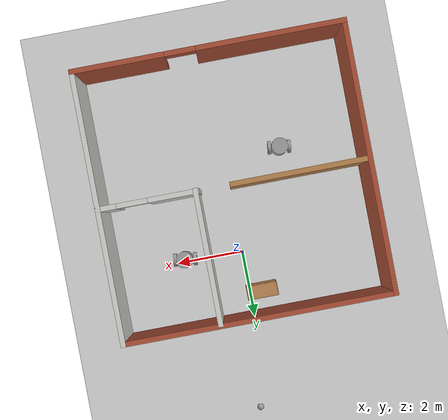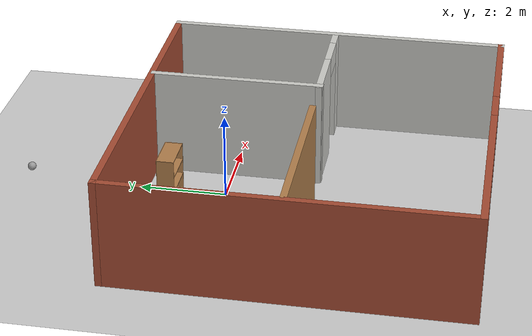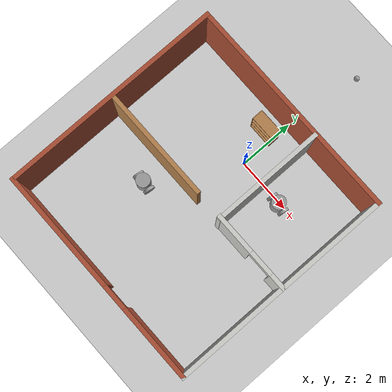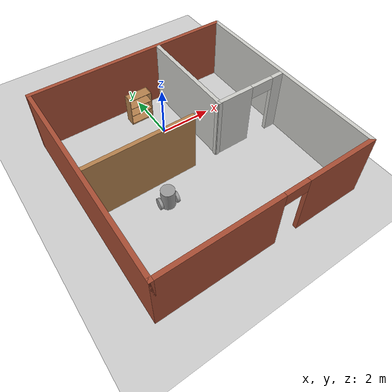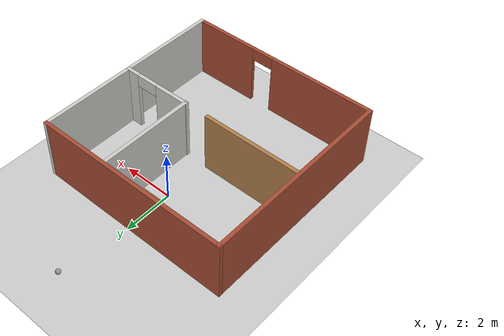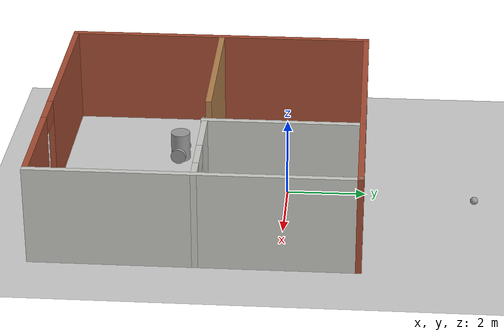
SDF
<sdf version="1.6">
 <world name="default">
  <plugin name="welcome" filename="libwelcome.so"/>
  <light name="sun" type="directional">
   <pose>0 0 10 0 -0 0</pose>
   <diffuse>0.8 0.8 0.8 1</diffuse>
   <specular>0.1 0.1 0.1 1</specular>
   <attenuation>
    <range>1000</range>
    <constant>0.9</constant>
    <linear>0.01</linear>
    <quadratic>0.001</quadratic>
   </attenuation>
   <direction>-0.5 0.5 -1</direction>
  </light>
  <model name="ground_plane">
   <static>1</static>
   <link name="link">
    <collision name="collision">
     <geometry><plane><normal>0 0 1</normal><size>100 100</size></plane></geometry>
     <surface><friction><ode><mu>100</mu><mu2>50</mu2></ode></friction></surface>
    </collision>
    <visual name="visual">
     <cast_shadows>0</cast_shadows>
     <geometry><plane><normal>0 0 1</normal><size>100 100</size></plane></geometry>
     <material>
      <script><uri>file://media/materials/scripts/gazebo.material</uri><name>Gazebo/Grey</name></script>
     </material>
    </visual>
   </link>
  </model>
  <gravity>0 0 -9.8</gravity>
  <magnetic_field>6e-06 2.3e-05 -4.2e-05</magnetic_field>
  <atmosphere type="adiabatic"/>
  <physics name="default_physics" default="0" type="ode">
   <max_step_size>0.001</max_step_size>
   <real_time_factor>1</real_time_factor>
   <real_time_update_rate>1000</real_time_update_rate>
  </physics>
  <scene><ambient>0.4 0.4 0.4 1</ambient><background>0.7 0.7 0.7 1</background><shadows>1</shadows></scene>
  <spherical_coordinates>
   <surface_model>EARTH_WGS84</surface_model>
   <latitude_deg>0</latitude_deg>
   <longitude_deg>0</longitude_deg>
   <elevation>0</elevation>
   <heading_deg>0</heading_deg>
  </spherical_coordinates>
  <model name="Billy">
   <link name="link_0">
    <pose>0 0 0.116667 0 -0 0</pose>
    <inertial>
     <mass>1</mass>
     <inertia><ixx>0.145833</ixx><ixy>0</ixy><ixz>0</ixz><iyy>0.145833</iyy><iyz>0</iyz><izz>0.125</izz></inertia>
     <pose>0 0 0.2 0 -0 0</pose>
    </inertial>
    <visual name="visual">
     <geometry><cylinder><radius>0.25</radius><length>0.75</length></cylinder></geometry>
     <material>
      <lighting>1</lighting>
      <script><uri>file://media/materials/scripts/gazebo.material</uri><name>Gazebo/Grey</name></script>
      <shader type="pixel"><normal_map>__default__</normal_map></shader>
      <ambient>0.3 0.3 0.3 1</ambient>
      <diffuse>0.7 0.7 0.7 1</diffuse>
      <specular>0.01 0.01 0.01 1</specular>
      <emissive>0 0 0 1</emissive>
     </material>
    </visual>
    <collision name="collision">
     <geometry><cylinder><radius>0.25</radius><length>0.75</length></cylinder></geometry>
     <surface>
      <friction>
       <ode><mu>1</mu><mu2>1</mu2><fdir1>0 0 0</fdir1><slip1>0</slip1><slip2>0</slip2></ode>
       <torsional>
        <coefficient>1</coefficient>
        <patch_radius>0</patch_radius>
        <surface_radius>0</surface_radius>
        <use_patch_radius>1</use_patch_radius>
        <ode><slip>0</slip></ode>
       </torsional>
      </friction>
      <bounce><restitution_coefficient>0</restitution_coefficient><threshold>1e+06</threshold></bounce>
      <contact>
       <collide_without_contact>0</collide_without_contact>
       <collide_without_contact_bitmask>1</collide_without_contact_bitmask>
       <collide_bitmask>1</collide_bitmask>
       <ode>
        <soft_cfm>0</soft_cfm>
        <soft_erp>0.2</soft_erp>
        <kp>1e+13</kp>
        <kd>1</kd>
        <max_vel>0.01</max_vel>
        <min_depth>0</min_depth>
       </ode>
       <bullet>
        <split_impulse>1</split_impulse>
        <split_impulse_penetration_threshold>-0.01</split_impulse_penetration_threshold>
        <soft_cfm>0</soft_cfm>
        <soft_erp>0.2</soft_erp>
        <kp>1e+13</kp>
        <kd>1</kd>
       </bullet>
      </contact>
     </surface>
    </collision>
   </link>
   <link name="link_1">
    <pose>0 -0.300019 -0.058333 1.5707 -0 0</pose>
    <inertial>
     <mass>1</mass>
     <inertia><ixx>0.145833</ixx><ixy>0</ixy><ixz>0</ixz><iyy>0.145833</iyy><iyz>0</iyz><izz>0.125</izz></inertia>
    </inertial>
    <visual name="visual">
     <geometry><cylinder><radius>0.2</radius><length>0.1</length></cylinder></geometry>
     <material>
      <lighting>1</lighting>
      <script><uri>file://media/materials/scripts/gazebo.material</uri><name>Gazebo/Grey</name></script>
      <shader type="pixel"><normal_map>__default__</normal_map></shader>
      <ambient>0.3 0.3 0.3 1</ambient>
      <diffuse>0.7 0.7 0.7 1</diffuse>
      <specular>0.01 0.01 0.01 1</specular>
      <emissive>0 0 0 1</emissive>
     </material>
    </visual>
    <collision name="collision">
     <geometry><cylinder><radius>0.2</radius><length>0.1</length></cylinder></geometry>
     <surface>
      <friction>
       <ode><mu>1</mu><mu2>1</mu2><fdir1>0 0 0</fdir1><slip1>0</slip1><slip2>0</slip2></ode>
       <torsional>
        <coefficient>1</coefficient>
        <patch_radius>0</patch_radius>
        <surface_radius>0</surface_radius>
        <use_patch_radius>1</use_patch_radius>
        <ode><slip>0</slip></ode>
       </torsional>
      </friction>
      <bounce><restitution_coefficient>0</restitution_coefficient><threshold>1e+06</threshold></bounce>
      <contact>
       <collide_without_contact>0</collide_without_contact>
       <collide_without_contact_bitmask>1</collide_without_contact_bitmask>
       <collide_bitmask>1</collide_bitmask>
       <ode>
        <soft_cfm>0</soft_cfm>
        <soft_erp>0.2</soft_erp>
        <kp>1e+13</kp>
        <kd>1</kd>
        <max_vel>0.01</max_vel>
        <min_depth>0</min_depth>
       </ode>
       <bullet>
        <split_impulse>1</split_impulse>
        <split_impulse_penetration_threshold>-0.01</split_impulse_penetration_threshold>
        <soft_cfm>0</soft_cfm>
        <soft_erp>0.2</soft_erp>
        <kp>1e+13</kp>
        <kd>1</kd>
       </bullet>
      </contact>
     </surface>
    </collision>
   </link>
   <link name="link_1_clone">
    <pose>0 0.300019 -0.058333 1.5707 -0 0</pose>
    <inertial>
     <mass>1</mass>
     <inertia><ixx>0.145833</ixx><ixy>0</ixy><ixz>0</ixz><iyy>0.145833</iyy><iyz>0</iyz><izz>0.125</izz></inertia>
    </inertial>
    <visual name="visual">
     <geometry><cylinder><radius>0.2</radius><length>0.1</length></cylinder></geometry>
     <material>
      <lighting>1</lighting>
      <script><uri>file://media/materials/scripts/gazebo.material</uri><name>Gazebo/Grey</name></script>
      <shader type="pixel"><normal_map>__default__</normal_map></shader>
      <ambient>0.3 0.3 0.3 1</ambient>
      <diffuse>0.7 0.7 0.7 1</diffuse>
      <specular>0.01 0.01 0.01 1</specular>
      <emissive>0 0 0 1</emissive>
     </material>
    </visual>
    <collision name="collision">
     <geometry><cylinder><radius>0.2</radius><length>0.1</length></cylinder></geometry>
     <surface>
      <friction>
       <ode><mu>1</mu><mu2>1</mu2><fdir1>0 0 0</fdir1><slip1>0</slip1><slip2>0</slip2></ode>
       <torsional>
        <coefficient>1</coefficient>
        <patch_radius>0</patch_radius>
        <surface_radius>0</surface_radius>
        <use_patch_radius>1</use_patch_radius>
        <ode><slip>0</slip></ode>
       </torsional>
      </friction>
      <bounce><restitution_coefficient>0</restitution_coefficient><threshold>1e+06</threshold></bounce>
      <contact>
       <collide_without_contact>0</collide_without_contact>
       <collide_without_contact_bitmask>1</collide_without_contact_bitmask>
       <collide_bitmask>1</collide_bitmask>
       <ode>
        <soft_cfm>0</soft_cfm>
        <soft_erp>0.2</soft_erp>
        <kp>1e+13</kp>
        <kd>1</kd>
        <max_vel>0.01</max_vel>
        <min_depth>0</min_depth>
       </ode>
       <bullet>
        <split_impulse>1</split_impulse>
        <split_impulse_penetration_threshold>-0.01</split_impulse_penetration_threshold>
        <soft_cfm>0</soft_cfm>
        <soft_erp>0.2</soft_erp>
        <kp>1e+13</kp>
        <kd>1</kd>
       </bullet>
      </contact>
     </surface>
    </collision>
   </link>
   <joint name="link_0_JOINT_1" type="revolute">
    <parent>link_0</parent>
    <child>link_1</child>
    <axis>
     <xyz>1 0 0</xyz>
     <use_parent_model_frame>0</use_parent_model_frame>
     <limit>
      <lower>-1.79769e+308</lower>
      <upper>1.79769e+308</upper>
      <effort>-1</effort>
      <velocity>-1</velocity>
     </limit>
     <dynamics>
      <spring_reference>0</spring_reference>
      <spring_stiffness>0</spring_stiffness>
      <damping>0</damping>
     </dynamics>
    </axis>
    <physics>
     <ode><limit><cfm>0</cfm><erp>0.2</erp></limit><suspension><cfm>0</cfm><erp>0.2</erp></suspension></ode>
    </physics>
   </joint>
   <joint name="link_0_JOINT_2" type="revolute">
    <parent>link_0</parent>
    <child>link_1_clone</child>
    <axis>
     <xyz>1 0 0</xyz>
     <use_parent_model_frame>0</use_parent_model_frame>
     <limit>
      <lower>-1.79769e+308</lower>
      <upper>1.79769e+308</upper>
      <effort>-1</effort>
      <velocity>-1</velocity>
     </limit>
     <dynamics>
      <spring_reference>0</spring_reference>
      <spring_stiffness>0</spring_stiffness>
      <damping>0</damping>
     </dynamics>
    </axis>
    <physics>
     <ode><limit><cfm>0</cfm><erp>0.2</erp></limit><suspension><cfm>0</cfm><erp>0.2</erp></suspension></ode>
    </physics>
   </joint>
   <static>0</static>
   <pose>-1.67828 -2.91025 0.258333 0 0 -1.68019</pose>
  </model>
  <model name="bookshelf">
   <static>1</static>
   <link name="link">
    <inertial><mass>1</mass></inertial>
    <collision name="back">
     <pose>0 0.005 0.6 0 -0 0</pose>
     <geometry><box><size>0.9 0.01 1.2</size></box></geometry>
    </collision>
    <visual name="visual1">
     <pose>0 0.005 0.6 0 -0 0</pose>
     <geometry><box><size>0.9 0.01 1.2</size></box></geometry>
     <material>
      <script><uri>file://media/materials/scripts/gazebo.material</uri><name>Gazebo/Wood</name></script>
     </material>
    </visual>
    <collision name="left_side">
     <pose>0.45 -0.195 0.6 0 -0 0</pose>
     <geometry><box><size>0.02 0.4 1.2</size></box></geometry>
    </collision>
    <visual name="visual2">
     <pose>0.45 -0.195 0.6 0 -0 0</pose>
     <geometry><box><size>0.02 0.4 1.2</size></box></geometry>
     <material>
      <script><uri>file://media/materials/scripts/gazebo.material</uri><name>Gazebo/Wood</name></script>
     </material>
    </visual>
    <collision name="right_side">
     <pose>-0.45 -0.195 0.6 0 -0 0</pose>
     <geometry><box><size>0.02 0.4 1.2</size></box></geometry>
    </collision>
    <visual name="visual3">
     <pose>-0.45 -0.195 0.6 0 -0 0</pose>
     <geometry><box><size>0.02 0.4 1.2</size></box></geometry>
     <material>
      <script><uri>file://media/materials/scripts/gazebo.material</uri><name>Gazebo/Wood</name></script>
     </material>
    </visual>
    <collision name="bottom">
     <pose>0 -0.195 0.03 0 -0 0</pose>
     <geometry><box><size>0.88 0.4 0.06</size></box></geometry>
    </collision>
    <visual name="visual4">
     <pose>0 -0.195 0.03 0 -0 0</pose>
     <geometry><box><size>0.88 0.4 0.06</size></box></geometry>
     <material>
      <script><uri>file://media/materials/scripts/gazebo.material</uri><name>Gazebo/Wood</name></script>
     </material>
    </visual>
    <collision name="top">
     <pose>0 -0.195 1.19 0 -0 0</pose>
     <geometry><box><size>0.88 0.4 0.02</size></box></geometry>
    </collision>
    <visual name="visual5">
     <pose>0 -0.195 1.19 0 -0 0</pose>
     <geometry><box><size>0.88 0.4 0.02</size></box></geometry>
     <material>
      <script><uri>file://media/materials/scripts/gazebo.material</uri><name>Gazebo/Wood</name></script>
     </material>
    </visual>
    <collision name="low_shelf">
     <pose>0 -0.195 0.43 0 -0 0</pose>
     <geometry><box><size>0.88 0.4 0.02</size></box></geometry>
    </collision>
    <visual name="visual6">
     <pose>0 -0.195 0.43 0 -0 0</pose>
     <geometry><box><size>0.88 0.4 0.02</size></box></geometry>
     <material>
      <script><uri>file://media/materials/scripts/gazebo.material</uri><name>Gazebo/Wood</name></script>
     </material>
    </visual>
    <collision name="high_shelf">
     <pose>0 -0.195 0.8 0 -0 0</pose>
     <geometry><box><size>0.88 0.4 0.02</size></box></geometry>
    </collision>
    <visual name="visual7">
     <pose>0 -0.195 0.8 0 -0 0</pose>
     <geometry><box><size>0.88 0.4 0.02</size></box></geometry>
     <material>
      <script><uri>file://media/materials/scripts/gazebo.material</uri><name>Gazebo/Wood</name></script>
     </material>
    </visual>
   </link>
   <pose>-0.353037 1.40595 0 0 -0 0</pose>
  </model>
  <model name="Billy_clone">
   <link name="link_0">
    <pose>0 0 0.116667 0 -0 0</pose>
    <inertial>
     <mass>1</mass>
     <inertia><ixx>0.145833</ixx><ixy>0</ixy><ixz>0</ixz><iyy>0.145833</iyy><iyz>0</iyz><izz>0.125</izz></inertia>
     <pose>0 0 0.2 0 -0 0</pose>
    </inertial>
    <visual name="visual">
     <geometry><cylinder><radius>0.25</radius><length>0.75</length></cylinder></geometry>
     <material>
      <lighting>1</lighting>
      <script><uri>file://media/materials/scripts/gazebo.material</uri><name>Gazebo/Grey</name></script>
      <shader type="pixel"><normal_map>__default__</normal_map></shader>
      <ambient>0.3 0.3 0.3 1</ambient>
      <diffuse>0.7 0.7 0.7 1</diffuse>
      <specular>0.01 0.01 0.01 1</specular>
      <emissive>0 0 0 1</emissive>
     </material>
    </visual>
    <collision name="collision">
     <geometry><cylinder><radius>0.25</radius><length>0.75</length></cylinder></geometry>
     <surface>
      <friction>
       <ode><mu>1</mu><mu2>1</mu2><fdir1>0 0 0</fdir1><slip1>0</slip1><slip2>0</slip2></ode>
       <torsional>
        <coefficient>1</coefficient>
        <patch_radius>0</patch_radius>
        <surface_radius>0</surface_radius>
        <use_patch_radius>1</use_patch_radius>
        <ode><slip>0</slip></ode>
       </torsional>
      </friction>
      <bounce><restitution_coefficient>0</restitution_coefficient><threshold>1e+06</threshold></bounce>
      <contact>
       <collide_without_contact>0</collide_without_contact>
       <collide_without_contact_bitmask>1</collide_without_contact_bitmask>
       <collide_bitmask>1</collide_bitmask>
       <ode>
        <soft_cfm>0</soft_cfm>
        <soft_erp>0.2</soft_erp>
        <kp>1e+13</kp>
        <kd>1</kd>
        <max_vel>0.01</max_vel>
        <min_depth>0</min_depth>
       </ode>
       <bullet>
        <split_impulse>1</split_impulse>
        <split_impulse_penetration_threshold>-0.01</split_impulse_penetration_threshold>
        <soft_cfm>0</soft_cfm>
        <soft_erp>0.2</soft_erp>
        <kp>1e+13</kp>
        <kd>1</kd>
       </bullet>
      </contact>
     </surface>
    </collision>
   </link>
   <link name="link_1">
    <pose>0 -0.300019 -0.058333 1.5707 -0 0</pose>
    <inertial>
     <mass>1</mass>
     <inertia><ixx>0.145833</ixx><ixy>0</ixy><ixz>0</ixz><iyy>0.145833</iyy><iyz>0</iyz><izz>0.125</izz></inertia>
    </inertial>
    <visual name="visual">
     <geometry><cylinder><radius>0.2</radius><length>0.1</length></cylinder></geometry>
     <material>
      <lighting>1</lighting>
      <script><uri>file://media/materials/scripts/gazebo.material</uri><name>Gazebo/Grey</name></script>
      <shader type="pixel"><normal_map>__default__</normal_map></shader>
      <ambient>0.3 0.3 0.3 1</ambient>
      <diffuse>0.7 0.7 0.7 1</diffuse>
      <specular>0.01 0.01 0.01 1</specular>
      <emissive>0 0 0 1</emissive>
     </material>
    </visual>
    <collision name="collision">
     <geometry><cylinder><radius>0.2</radius><length>0.1</length></cylinder></geometry>
     <surface>
      <friction>
       <ode><mu>1</mu><mu2>1</mu2><fdir1>0 0 0</fdir1><slip1>0</slip1><slip2>0</slip2></ode>
       <torsional>
        <coefficient>1</coefficient>
        <patch_radius>0</patch_radius>
        <surface_radius>0</surface_radius>
        <use_patch_radius>1</use_patch_radius>
        <ode><slip>0</slip></ode>
       </torsional>
      </friction>
      <bounce><restitution_coefficient>0</restitution_coefficient><threshold>1e+06</threshold></bounce>
      <contact>
       <collide_without_contact>0</collide_without_contact>
       <collide_without_contact_bitmask>1</collide_without_contact_bitmask>
       <collide_bitmask>1</collide_bitmask>
       <ode>
        <soft_cfm>0</soft_cfm>
        <soft_erp>0.2</soft_erp>
        <kp>1e+13</kp>
        <kd>1</kd>
        <max_vel>0.01</max_vel>
        <min_depth>0</min_depth>
       </ode>
       <bullet>
        <split_impulse>1</split_impulse>
        <split_impulse_penetration_threshold>-0.01</split_impulse_penetration_threshold>
        <soft_cfm>0</soft_cfm>
        <soft_erp>0.2</soft_erp>
        <kp>1e+13</kp>
        <kd>1</kd>
       </bullet>
      </contact>
     </surface>
    </collision>
   </link>
   <link name="link_1_clone">
    <pose>0 0.300019 -0.058333 1.5707 -0 0</pose>
    <inertial>
     <mass>1</mass>
     <inertia><ixx>0.145833</ixx><ixy>0</ixy><ixz>0</ixz><iyy>0.145833</iyy><iyz>0</iyz><izz>0.125</izz></inertia>
    </inertial>
    <visual name="visual">
     <geometry><cylinder><radius>0.2</radius><length>0.1</length></cylinder></geometry>
     <material>
      <lighting>1</lighting>
      <script><uri>file://media/materials/scripts/gazebo.material</uri><name>Gazebo/Grey</name></script>
      <shader type="pixel"><normal_map>__default__</normal_map></shader>
      <ambient>0.3 0.3 0.3 1</ambient>
      <diffuse>0.7 0.7 0.7 1</diffuse>
      <specular>0.01 0.01 0.01 1</specular>
      <emissive>0 0 0 1</emissive>
     </material>
    </visual>
    <collision name="collision">
     <geometry><cylinder><radius>0.2</radius><length>0.1</length></cylinder></geometry>
     <surface>
      <friction>
       <ode><mu>1</mu><mu2>1</mu2><fdir1>0 0 0</fdir1><slip1>0</slip1><slip2>0</slip2></ode>
       <torsional>
        <coefficient>1</coefficient>
        <patch_radius>0</patch_radius>
        <surface_radius>0</surface_radius>
        <use_patch_radius>1</use_patch_radius>
        <ode><slip>0</slip></ode>
       </torsional>
      </friction>
      <bounce><restitution_coefficient>0</restitution_coefficient><threshold>1e+06</threshold></bounce>
      <contact>
       <collide_without_contact>0</collide_without_contact>
       <collide_without_contact_bitmask>1</collide_without_contact_bitmask>
       <collide_bitmask>1</collide_bitmask>
       <ode>
        <soft_cfm>0</soft_cfm>
        <soft_erp>0.2</soft_erp>
        <kp>1e+13</kp>
        <kd>1</kd>
        <max_vel>0.01</max_vel>
        <min_depth>0</min_depth>
       </ode>
       <bullet>
        <split_impulse>1</split_impulse>
        <split_impulse_penetration_threshold>-0.01</split_impulse_penetration_threshold>
        <soft_cfm>0</soft_cfm>
        <soft_erp>0.2</soft_erp>
        <kp>1e+13</kp>
        <kd>1</kd>
       </bullet>
      </contact>
     </surface>
    </collision>
   </link>
   <joint name="link_0_JOINT_1" type="revolute">
    <parent>link_0</parent>
    <child>link_1</child>
    <axis>
     <xyz>1 0 0</xyz>
     <use_parent_model_frame>0</use_parent_model_frame>
     <limit>
      <lower>-1.79769e+308</lower>
      <upper>1.79769e+308</upper>
      <effort>-1</effort>
      <velocity>-1</velocity>
     </limit>
     <dynamics>
      <spring_reference>0</spring_reference>
      <spring_stiffness>0</spring_stiffness>
      <damping>0</damping>
     </dynamics>
    </axis>
    <physics>
     <ode><limit><cfm>0</cfm><erp>0.2</erp></limit><suspension><cfm>0</cfm><erp>0.2</erp></suspension></ode>
    </physics>
   </joint>
   <joint name="link_0_JOINT_2" type="revolute">
    <parent>link_0</parent>
    <child>link_1_clone</child>
    <axis>
     <xyz>1 0 0</xyz>
     <use_parent_model_frame>0</use_parent_model_frame>
     <limit>
      <lower>-1.79769e+308</lower>
      <upper>1.79769e+308</upper>
      <effort>-1</effort>
      <velocity>-1</velocity>
     </limit>
     <dynamics>
      <spring_reference>0</spring_reference>
      <spring_stiffness>0</spring_stiffness>
      <damping>0</damping>
     </dynamics>
    </axis>
    <physics>
     <ode><limit><cfm>0</cfm><erp>0.2</erp></limit><suspension><cfm>0</cfm><erp>0.2</erp></suspension></ode>
    </physics>
   </joint>
   <static>0</static>
   <pose>1.75089 -0.093715 0.258333 -1e-06 6e-06 -1.68683</pose>
  </model>
  <model name="my_ball">
   <link name="link_0">
    <pose>-0.67034 0.119159 0 0 -0 0</pose>
    <inertial>
     <mass>1</mass>
     <inertia><ixx>0.1</ixx><ixy>0</ixy><ixz>0</ixz><iyy>0.1</iyy><iyz>0</iyz><izz>0.1</izz></inertia>
    </inertial>
    <visual name="visual">
     <geometry><sphere><radius>0.1</radius></sphere></geometry>
     <material>
      <lighting>1</lighting>
      <script><uri>file://media/materials/scripts/gazebo.material</uri><name>Gazebo/Grey</name></script>
      <shader type="pixel"><normal_map>__default__</normal_map></shader>
      <ambient>0.3 0.3 0.3 1</ambient>
      <diffuse>1 1 1 1</diffuse>
      <specular>1 1 1 1</specular>
      <emissive>1 1 1 1</emissive>
     </material>
    </visual>
    <collision name="collision">
     <geometry><sphere><radius>0.1</radius></sphere></geometry>
     <surface>
      <friction>
       <ode><mu>1</mu><mu2>1</mu2><fdir1>0 0 0</fdir1><slip1>0</slip1><slip2>0</slip2></ode>
       <torsional>
        <coefficient>1</coefficient>
        <patch_radius>0</patch_radius>
        <surface_radius>0</surface_radius>
        <use_patch_radius>1</use_patch_radius>
        <ode><slip>0</slip></ode>
       </torsional>
      </friction>
      <bounce><restitution_coefficient>0</restitution_coefficient><threshold>1e+06</threshold></bounce>
      <contact>
       <collide_without_contact>0</collide_without_contact>
       <collide_without_contact_bitmask>1</collide_without_contact_bitmask>
       <collide_bitmask>1</collide_bitmask>
       <ode>
        <soft_cfm>0</soft_cfm>
        <soft_erp>0.2</soft_erp>
        <kp>1e+13</kp>
        <kd>1</kd>
        <max_vel>0.01</max_vel>
        <min_depth>0</min_depth>
       </ode>
       <bullet>
        <split_impulse>1</split_impulse>
        <split_impulse_penetration_threshold>-0.01</split_impulse_penetration_threshold>
        <soft_cfm>0</soft_cfm>
        <soft_erp>0.2</soft_erp>
        <kp>1e+13</kp>
        <kd>1</kd>
       </bullet>
      </contact>
     </surface>
    </collision>
   </link>
   <static>0</static>
   <pose>1.01196 4.62277 0.1 0 -0 0</pose>
  </model>
  <model name="Studio">
   <link name="Wall_0">
    <pose>-0.000709 -3.925 0 0 -0 0</pose>
    <visual name="Wall_0_Visual_0">
     <pose>-1.82072 0 1.25 0 -0 0</pose>
     <geometry><box><size>4.35856 0.15 2.5</size></box></geometry>
     <material>
      <script><uri>file://media/materials/scripts/gazebo.material</uri><name>Gazebo/Bricks</name></script>
      <ambient>1 1 1 1</ambient>
      <shader type="pixel"/>
      <diffuse>1 1 1 1</diffuse>
      <specular>0.2 0.2 0.2 1</specular>
      <emissive>0 0 0 1</emissive>
     </material>
     <meta><layer>0</layer></meta>
    </visual>
    <visual name="Wall_0_Visual_1">
     <pose>2.62928 0 1.25 0 -0 0</pose>
     <geometry><box><size>2.74144 0.15 2.5</size></box></geometry>
     <material>
      <script><uri>file://media/materials/scripts/gazebo.material</uri><name>Gazebo/Bricks</name></script>
      <ambient>1 1 1 1</ambient>
      <shader type="pixel"/>
      <diffuse>1 1 1 1</diffuse>
      <specular>0.2 0.2 0.2 1</specular>
      <emissive>0 0 0 1</emissive>
     </material>
     <meta><layer>0</layer></meta>
    </visual>
    <visual name="Wall_0_Visual_2">
     <pose>0.808556 0 2.25 0 -0 0</pose>
     <geometry><box><size>0.9 0.15 0.5</size></box></geometry>
     <material>
      <script><uri>file://media/materials/scripts/gazebo.material</uri><name>Gazebo/Bricks</name></script>
      <ambient>1 1 1 1</ambient>
      <shader type="pixel"/>
      <diffuse>1 1 1 1</diffuse>
      <specular>0.2 0.2 0.2 1</specular>
      <emissive>0 0 0 1</emissive>
     </material>
     <meta><layer>0</layer></meta>
    </visual>
    <collision name="Wall_0_Collision_0">
     <pose>-1.82072 0 1.25 0 -0 0</pose>
     <geometry><box><size>4.35856 0.15 2.5</size></box></geometry>
     <surface>
      <friction>
       <ode><mu>1</mu><mu2>1</mu2><fdir1>0 0 0</fdir1><slip1>0</slip1><slip2>0</slip2></ode>
       <torsional>
        <coefficient>1</coefficient>
        <patch_radius>0</patch_radius>
        <surface_radius>0</surface_radius>
        <use_patch_radius>1</use_patch_radius>
        <ode><slip>0</slip></ode>
       </torsional>
      </friction>
      <bounce><restitution_coefficient>0</restitution_coefficient><threshold>1e+06</threshold></bounce>
      <contact>
       <collide_without_contact>0</collide_without_contact>
       <collide_without_contact_bitmask>1</collide_without_contact_bitmask>
       <collide_bitmask>1</collide_bitmask>
       <ode>
        <soft_cfm>0</soft_cfm>
        <soft_erp>0.2</soft_erp>
        <kp>1e+13</kp>
        <kd>1</kd>
        <max_vel>0.01</max_vel>
        <min_depth>0</min_depth>
       </ode>
       <bullet>
        <split_impulse>1</split_impulse>
        <split_impulse_penetration_threshold>-0.01</split_impulse_penetration_threshold>
        <soft_cfm>0</soft_cfm>
        <soft_erp>0.2</soft_erp>
        <kp>1e+13</kp>
        <kd>1</kd>
       </bullet>
      </contact>
     </surface>
    </collision>
    <collision name="Wall_0_Collision_2">
     <pose>0.808556 0 2.25 0 -0 0</pose>
     <geometry><box><size>0.9 0.15 0.5</size></box></geometry>
     <surface>
      <friction>
       <ode><mu>1</mu><mu2>1</mu2><fdir1>0 0 0</fdir1><slip1>0</slip1><slip2>0</slip2></ode>
       <torsional>
        <coefficient>1</coefficient>
        <patch_radius>0</patch_radius>
        <surface_radius>0</surface_radius>
        <use_patch_radius>1</use_patch_radius>
        <ode><slip>0</slip></ode>
       </torsional>
      </friction>
      <bounce><restitution_coefficient>0</restitution_coefficient><threshold>1e+06</threshold></bounce>
      <contact>
       <collide_without_contact>0</collide_without_contact>
       <collide_without_contact_bitmask>1</collide_without_contact_bitmask>
       <collide_bitmask>1</collide_bitmask>
       <ode>
        <soft_cfm>0</soft_cfm>
        <soft_erp>0.2</soft_erp>
        <kp>1e+13</kp>
        <kd>1</kd>
        <max_vel>0.01</max_vel>
        <min_depth>0</min_depth>
       </ode>
       <bullet>
        <split_impulse>1</split_impulse>
        <split_impulse_penetration_threshold>-0.01</split_impulse_penetration_threshold>
        <soft_cfm>0</soft_cfm>
        <soft_erp>0.2</soft_erp>
        <kp>1e+13</kp>
        <kd>1</kd>
       </bullet>
      </contact>
     </surface>
    </collision>
    <collision name="Wall_0_Collision_1">
     <pose>2.62928 0 1.25 0 -0 0</pose>
     <geometry><box><size>2.74144 0.15 2.5</size></box></geometry>
     <surface>
      <friction>
       <ode><mu>1</mu><mu2>1</mu2><fdir1>0 0 0</fdir1><slip1>0</slip1><slip2>0</slip2></ode>
       <torsional>
        <coefficient>1</coefficient>
        <patch_radius>0</patch_radius>
        <surface_radius>0</surface_radius>
        <use_patch_radius>1</use_patch_radius>
        <ode><slip>0</slip></ode>
       </torsional>
      </friction>
      <bounce><restitution_coefficient>0</restitution_coefficient><threshold>1e+06</threshold></bounce>
      <contact>
       <collide_without_contact>0</collide_without_contact>
       <collide_without_contact_bitmask>1</collide_without_contact_bitmask>
       <collide_bitmask>1</collide_bitmask>
       <ode>
        <soft_cfm>0</soft_cfm>
        <soft_erp>0.2</soft_erp>
        <kp>1e+13</kp>
        <kd>1</kd>
        <max_vel>0.01</max_vel>
        <min_depth>0</min_depth>
       </ode>
       <bullet>
        <split_impulse>1</split_impulse>
        <split_impulse_penetration_threshold>-0.01</split_impulse_penetration_threshold>
        <soft_cfm>0</soft_cfm>
        <soft_erp>0.2</soft_erp>
        <kp>1e+13</kp>
        <kd>1</kd>
       </bullet>
      </contact>
     </surface>
    </collision>
   </link>
   <link name="Wall_11">
    <pose>-3.92571 0 0 0 0 -1.5708</pose>
    <visual name="Wall_11_Visual">
     <pose>0 0 1.25 0 -0 0</pose>
     <geometry><box><size>8 0.15 2.5</size></box></geometry>
     <material>
      <script><uri>file://media/materials/scripts/gazebo.material</uri><name>Gazebo/Bricks</name></script>
      <ambient>1 1 1 1</ambient>
      <shader type="pixel"/>
      <diffuse>1 1 1 1</diffuse>
      <specular>0.2 0.2 0.2 1</specular>
      <emissive>0 0 0 1</emissive>
     </material>
     <meta><layer>0</layer></meta>
    </visual>
    <collision name="Wall_11_Collision">
     <pose>0 0 1.25 0 -0 0</pose>
     <geometry><box><size>8 0.15 2.5</size></box></geometry>
     <surface>
      <friction>
       <ode><mu>1</mu><mu2>1</mu2><fdir1>0 0 0</fdir1><slip1>0</slip1><slip2>0</slip2></ode>
       <torsional>
        <coefficient>1</coefficient>
        <patch_radius>0</patch_radius>
        <surface_radius>0</surface_radius>
        <use_patch_radius>1</use_patch_radius>
        <ode><slip>0</slip></ode>
       </torsional>
      </friction>
      <bounce><restitution_coefficient>0</restitution_coefficient><threshold>1e+06</threshold></bounce>
      <contact>
       <collide_without_contact>0</collide_without_contact>
       <collide_without_contact_bitmask>1</collide_without_contact_bitmask>
       <collide_bitmask>1</collide_bitmask>
       <ode>
        <soft_cfm>0</soft_cfm>
        <soft_erp>0.2</soft_erp>
        <kp>1e+13</kp>
        <kd>1</kd>
        <max_vel>0.01</max_vel>
        <min_depth>0</min_depth>
       </ode>
       <bullet>
        <split_impulse>1</split_impulse>
        <split_impulse_penetration_threshold>-0.01</split_impulse_penetration_threshold>
        <soft_cfm>0</soft_cfm>
        <soft_erp>0.2</soft_erp>
        <kp>1e+13</kp>
        <kd>1</kd>
       </bullet>
      </contact>
     </surface>
    </collision>
   </link>
   <link name="Wall_13">
    <pose>-1.88191 0.037007 0 0 -0 3.14159</pose>
    <visual name="Wall_13_Visual">
     <pose>0 0 1.25 0 -0 0</pose>
     <geometry><box><size>4 0.15 2.5</size></box></geometry>
     <material>
      <script><uri>file://media/materials/scripts/gazebo.material</uri><name>Gazebo/Wood</name></script>
      <ambient>1 1 1 1</ambient>
      <shader type="pixel"/>
      <diffuse>1 1 1 1</diffuse>
      <specular>0.2 0.2 0.2 1</specular>
      <emissive>0 0 0 1</emissive>
     </material>
     <meta><layer>0</layer></meta>
    </visual>
    <collision name="Wall_13_Collision">
     <pose>0 0 1.25 0 -0 0</pose>
     <geometry><box><size>4 0.15 2.5</size></box></geometry>
     <surface>
      <friction>
       <ode><mu>1</mu><mu2>1</mu2><fdir1>0 0 0</fdir1><slip1>0</slip1><slip2>0</slip2></ode>
       <torsional>
        <coefficient>1</coefficient>
        <patch_radius>0</patch_radius>
        <surface_radius>0</surface_radius>
        <use_patch_radius>1</use_patch_radius>
        <ode><slip>0</slip></ode>
       </torsional>
      </friction>
      <bounce><restitution_coefficient>0</restitution_coefficient><threshold>1e+06</threshold></bounce>
      <contact>
       <collide_without_contact>0</collide_without_contact>
       <collide_without_contact_bitmask>1</collide_without_contact_bitmask>
       <collide_bitmask>1</collide_bitmask>
       <ode>
        <soft_cfm>0</soft_cfm>
        <soft_erp>0.2</soft_erp>
        <kp>1e+13</kp>
        <kd>1</kd>
        <max_vel>0.01</max_vel>
        <min_depth>0</min_depth>
       </ode>
       <bullet>
        <split_impulse>1</split_impulse>
        <split_impulse_penetration_threshold>-0.01</split_impulse_penetration_threshold>
        <soft_cfm>0</soft_cfm>
        <soft_erp>0.2</soft_erp>
        <kp>1e+13</kp>
        <kd>1</kd>
       </bullet>
      </contact>
     </surface>
    </collision>
   </link>
   <link name="Wall_15">
    <pose>1.10961 1.94575 0 0 0 -1.5708</pose>
    <visual name="Wall_15_Visual">
     <pose>0 0 1.25 0 -0 0</pose>
     <geometry><box><size>4 0.15 2.5</size></box></geometry>
     <material>
      <script><uri>file://media/materials/scripts/gazebo.material</uri><name>Gazebo/CeilingTiled</name></script>
      <ambient>0.435294 0.796078 0.67451 1</ambient>
      <shader type="pixel"/>
      <diffuse>1 1 1 1</diffuse>
      <specular>0 0 0 1</specular>
      <emissive>0 0 0 1</emissive>
     </material>
     <meta><layer>0</layer></meta>
    </visual>
    <collision name="Wall_15_Collision">
     <pose>0 0 1.25 0 -0 0</pose>
     <geometry><box><size>4 0.15 2.5</size></box></geometry>
     <surface>
      <friction>
       <ode><mu>1</mu><mu2>1</mu2><fdir1>0 0 0</fdir1><slip1>0</slip1><slip2>0</slip2></ode>
       <torsional>
        <coefficient>1</coefficient>
        <patch_radius>0</patch_radius>
        <surface_radius>0</surface_radius>
        <use_patch_radius>1</use_patch_radius>
        <ode><slip>0</slip></ode>
       </torsional>
      </friction>
      <bounce><restitution_coefficient>0</restitution_coefficient><threshold>1e+06</threshold></bounce>
      <contact>
       <collide_without_contact>0</collide_without_contact>
       <collide_without_contact_bitmask>1</collide_without_contact_bitmask>
       <collide_bitmask>1</collide_bitmask>
       <ode>
        <soft_cfm>0</soft_cfm>
        <soft_erp>0.2</soft_erp>
        <kp>1e+13</kp>
        <kd>1</kd>
        <max_vel>0.01</max_vel>
        <min_depth>0</min_depth>
       </ode>
       <bullet>
        <split_impulse>1</split_impulse>
        <split_impulse_penetration_threshold>-0.01</split_impulse_penetration_threshold>
        <soft_cfm>0</soft_cfm>
        <soft_erp>0.2</soft_erp>
        <kp>1e+13</kp>
        <kd>1</kd>
       </bullet>
      </contact>
     </surface>
    </collision>
   </link>
   <link name="Wall_17">
    <pose>2.50071 0.04093 0 0 -0 0</pose>
    <visual name="Wall_17_Visual_0">
     <pose>-0.754244 0 1.25 0 -0 0</pose>
     <geometry><box><size>1.49151 0.15 2.5</size></box></geometry>
     <material>
      <script><uri>file://media/materials/scripts/gazebo.material</uri><name>Gazebo/CeilingTiled</name></script>
      <ambient>0.435294 0.796078 0.67451 1</ambient>
      <shader type="pixel"/>
      <diffuse>1 1 1 1</diffuse>
      <specular>0 0 0 1</specular>
      <emissive>0 0 0 1</emissive>
     </material>
     <meta><layer>0</layer></meta>
    </visual>
    <visual name="Wall_17_Visual_1">
     <pose>1.19576 0 1.25 0 -0 0</pose>
     <geometry><box><size>0.608487 0.15 2.5</size></box></geometry>
     <material>
      <script><uri>file://media/materials/scripts/gazebo.material</uri><name>Gazebo/CeilingTiled</name></script>
      <ambient>0.435294 0.796078 0.67451 1</ambient>
      <shader type="pixel"/>
      <diffuse>1 1 1 1</diffuse>
      <specular>0 0 0 1</specular>
      <emissive>0 0 0 1</emissive>
     </material>
     <meta><layer>0</layer></meta>
    </visual>
    <visual name="Wall_17_Visual_2">
     <pose>0.441513 0 2.25 0 -0 0</pose>
     <geometry><box><size>0.9 0.15 0.5</size></box></geometry>
     <material>
      <script><uri>file://media/materials/scripts/gazebo.material</uri><name>Gazebo/CeilingTiled</name></script>
      <ambient>0.435294 0.796078 0.67451 1</ambient>
      <shader type="pixel"/>
      <diffuse>1 1 1 1</diffuse>
      <specular>0 0 0 1</specular>
      <emissive>0 0 0 1</emissive>
     </material>
     <meta><layer>0</layer></meta>
    </visual>
    <collision name="Wall_17_Collision_0">
     <pose>-0.754244 0 1.25 0 -0 0</pose>
     <geometry><box><size>1.49151 0.15 2.5</size></box></geometry>
     <surface>
      <friction>
       <ode><mu>1</mu><mu2>1</mu2><fdir1>0 0 0</fdir1><slip1>0</slip1><slip2>0</slip2></ode>
       <torsional>
        <coefficient>1</coefficient>
        <patch_radius>0</patch_radius>
        <surface_radius>0</surface_radius>
        <use_patch_radius>1</use_patch_radius>
        <ode><slip>0</slip></ode>
       </torsional>
      </friction>
      <bounce><restitution_coefficient>0</restitution_coefficient><threshold>1e+06</threshold></bounce>
      <contact>
       <collide_without_contact>0</collide_without_contact>
       <collide_without_contact_bitmask>1</collide_without_contact_bitmask>
       <collide_bitmask>1</collide_bitmask>
       <ode>
        <soft_cfm>0</soft_cfm>
        <soft_erp>0.2</soft_erp>
        <kp>1e+13</kp>
        <kd>1</kd>
        <max_vel>0.01</max_vel>
        <min_depth>0</min_depth>
       </ode>
       <bullet>
        <split_impulse>1</split_impulse>
        <split_impulse_penetration_threshold>-0.01</split_impulse_penetration_threshold>
        <soft_cfm>0</soft_cfm>
        <soft_erp>0.2</soft_erp>
        <kp>1e+13</kp>
        <kd>1</kd>
       </bullet>
      </contact>
     </surface>
    </collision>
    <collision name="Wall_17_Collision_1">
     <pose>1.19576 0 1.25 0 -0 0</pose>
     <geometry><box><size>0.608487 0.15 2.5</size></box></geometry>
     <surface>
      <friction>
       <ode><mu>1</mu><mu2>1</mu2><fdir1>0 0 0</fdir1><slip1>0</slip1><slip2>0</slip2></ode>
       <torsional>
        <coefficient>1</coefficient>
        <patch_radius>0</patch_radius>
        <surface_radius>0</surface_radius>
        <use_patch_radius>1</use_patch_radius>
        <ode><slip>0</slip></ode>
       </torsional>
      </friction>
      <bounce><restitution_coefficient>0</restitution_coefficient><threshold>1e+06</threshold></bounce>
      <contact>
       <collide_without_contact>0</collide_without_contact>
       <collide_without_contact_bitmask>1</collide_without_contact_bitmask>
       <collide_bitmask>1</collide_bitmask>
       <ode>
        <soft_cfm>0</soft_cfm>
        <soft_erp>0.2</soft_erp>
        <kp>1e+13</kp>
        <kd>1</kd>
        <max_vel>0.01</max_vel>
        <min_depth>0</min_depth>
       </ode>
       <bullet>
        <split_impulse>1</split_impulse>
        <split_impulse_penetration_threshold>-0.01</split_impulse_penetration_threshold>
        <soft_cfm>0</soft_cfm>
        <soft_erp>0.2</soft_erp>
        <kp>1e+13</kp>
        <kd>1</kd>
       </bullet>
      </contact>
     </surface>
    </collision>
    <collision name="Wall_17_Collision_2">
     <pose>0.441513 0 2.25 0 -0 0</pose>
     <geometry><box><size>0.9 0.15 0.5</size></box></geometry>
     <surface>
      <friction>
       <ode><mu>1</mu><mu2>1</mu2><fdir1>0 0 0</fdir1><slip1>0</slip1><slip2>0</slip2></ode>
       <torsional>
        <coefficient>1</coefficient>
        <patch_radius>0</patch_radius>
        <surface_radius>0</surface_radius>
        <use_patch_radius>1</use_patch_radius>
        <ode><slip>0</slip></ode>
       </torsional>
      </friction>
      <bounce><restitution_coefficient>0</restitution_coefficient><threshold>1e+06</threshold></bounce>
      <contact>
       <collide_without_contact>0</collide_without_contact>
       <collide_without_contact_bitmask>1</collide_without_contact_bitmask>
       <collide_bitmask>1</collide_bitmask>
       <ode>
        <soft_cfm>0</soft_cfm>
        <soft_erp>0.2</soft_erp>
        <kp>1e+13</kp>
        <kd>1</kd>
        <max_vel>0.01</max_vel>
        <min_depth>0</min_depth>
       </ode>
       <bullet>
        <split_impulse>1</split_impulse>
        <split_impulse_penetration_threshold>-0.01</split_impulse_penetration_threshold>
        <soft_cfm>0</soft_cfm>
        <soft_erp>0.2</soft_erp>
        <kp>1e+13</kp>
        <kd>1</kd>
       </bullet>
      </contact>
     </surface>
    </collision>
   </link>
   <link name="Wall_4">
    <pose>3.92429 0 0 0 -0 1.5708</pose>
    <visual name="Wall_4_Visual">
     <pose>0 0 1.25 0 -0 0</pose>
     <geometry><box><size>8 0.15 2.5</size></box></geometry>
     <material>
      <script><uri>file://media/materials/scripts/gazebo.material</uri><name>Gazebo/CeilingTiled</name></script>
      <ambient>0.435294 0.796078 0.67451 1</ambient>
      <shader type="pixel"/>
      <diffuse>1 1 1 1</diffuse>
      <specular>0 0 0 1</specular>
      <emissive>0 0 0 1</emissive>
     </material>
     <meta><layer>0</layer></meta>
    </visual>
    <collision name="Wall_4_Collision">
     <pose>0 0 1.25 0 -0 0</pose>
     <geometry><box><size>8 0.15 2.5</size></box></geometry>
     <surface>
      <friction>
       <ode><mu>1</mu><mu2>1</mu2><fdir1>0 0 0</fdir1><slip1>0</slip1><slip2>0</slip2></ode>
       <torsional>
        <coefficient>1</coefficient>
        <patch_radius>0</patch_radius>
        <surface_radius>0</surface_radius>
        <use_patch_radius>1</use_patch_radius>
        <ode><slip>0</slip></ode>
       </torsional>
      </friction>
      <bounce><restitution_coefficient>0</restitution_coefficient><threshold>1e+06</threshold></bounce>
      <contact>
       <collide_without_contact>0</collide_without_contact>
       <collide_without_contact_bitmask>1</collide_without_contact_bitmask>
       <collide_bitmask>1</collide_bitmask>
       <ode>
        <soft_cfm>0</soft_cfm>
        <soft_erp>0.2</soft_erp>
        <kp>1e+13</kp>
        <kd>1</kd>
        <max_vel>0.01</max_vel>
        <min_depth>0</min_depth>
       </ode>
       <bullet>
        <split_impulse>1</split_impulse>
        <split_impulse_penetration_threshold>-0.01</split_impulse_penetration_threshold>
        <soft_cfm>0</soft_cfm>
        <soft_erp>0.2</soft_erp>
        <kp>1e+13</kp>
        <kd>1</kd>
       </bullet>
      </contact>
     </surface>
    </collision>
   </link>
   <link name="Wall_9">
    <pose>-0.000709 3.925 0 0 -0 3.14159</pose>
    <visual name="Wall_9_Visual">
     <pose>0 0 1.25 0 -0 0</pose>
     <geometry><box><size>8 0.15 2.5</size></box></geometry>
     <material>
      <script><uri>file://media/materials/scripts/gazebo.material</uri><name>Gazebo/Bricks</name></script>
      <ambient>1 1 1 1</ambient>
      <shader type="pixel"/>
      <diffuse>1 1 1 1</diffuse>
      <specular>0.2 0.2 0.2 1</specular>
      <emissive>0 0 0 1</emissive>
     </material>
     <meta><layer>0</layer></meta>
    </visual>
    <collision name="Wall_9_Collision">
     <pose>0 0 1.25 0 -0 0</pose>
     <geometry><box><size>8 0.15 2.5</size></box></geometry>
     <surface>
      <friction>
       <ode><mu>1</mu><mu2>1</mu2><fdir1>0 0 0</fdir1><slip1>0</slip1><slip2>0</slip2></ode>
       <torsional>
        <coefficient>1</coefficient>
        <patch_radius>0</patch_radius>
        <surface_radius>0</surface_radius>
        <use_patch_radius>1</use_patch_radius>
        <ode><slip>0</slip></ode>
       </torsional>
      </friction>
      <bounce><restitution_coefficient>0</restitution_coefficient><threshold>1e+06</threshold></bounce>
      <contact>
       <collide_without_contact>0</collide_without_contact>
       <collide_without_contact_bitmask>1</collide_without_contact_bitmask>
       <collide_bitmask>1</collide_bitmask>
       <ode>
        <soft_cfm>0</soft_cfm>
        <soft_erp>0.2</soft_erp>
        <kp>1e+13</kp>
        <kd>1</kd>
        <max_vel>0.01</max_vel>
        <min_depth>0</min_depth>
       </ode>
       <bullet>
        <split_impulse>1</split_impulse>
        <split_impulse_penetration_threshold>-0.01</split_impulse_penetration_threshold>
        <soft_cfm>0</soft_cfm>
        <soft_erp>0.2</soft_erp>
        <kp>1e+13</kp>
        <kd>1</kd>
       </bullet>
      </contact>
     </surface>
    </collision>
   </link>
   <static>1</static>
   <pose>-0.108232 -2.03151 0 0 -0 0</pose>
  </model>
 </world>
</sdf>
